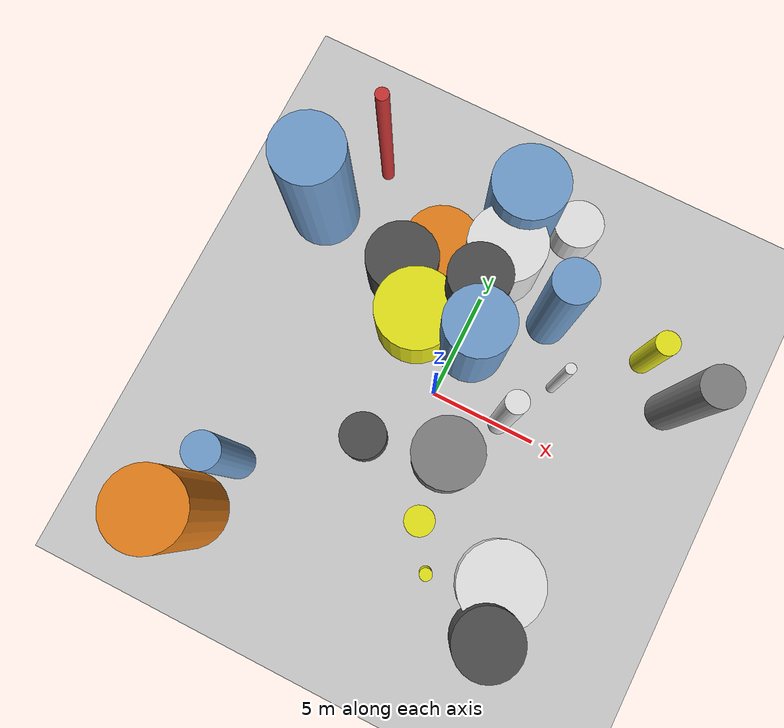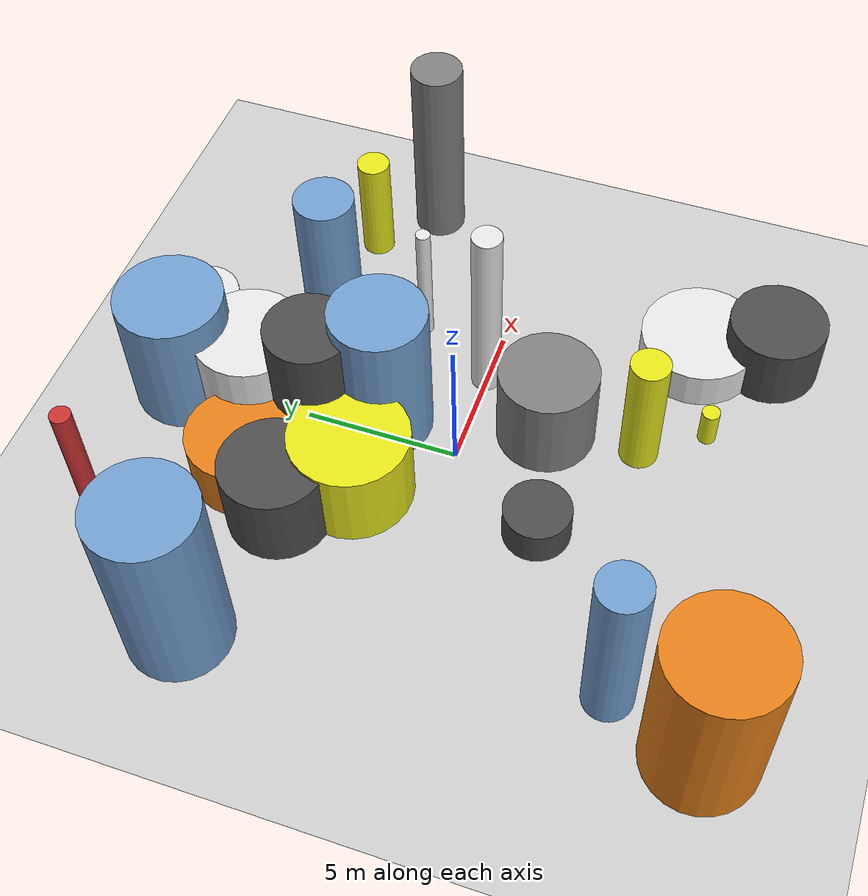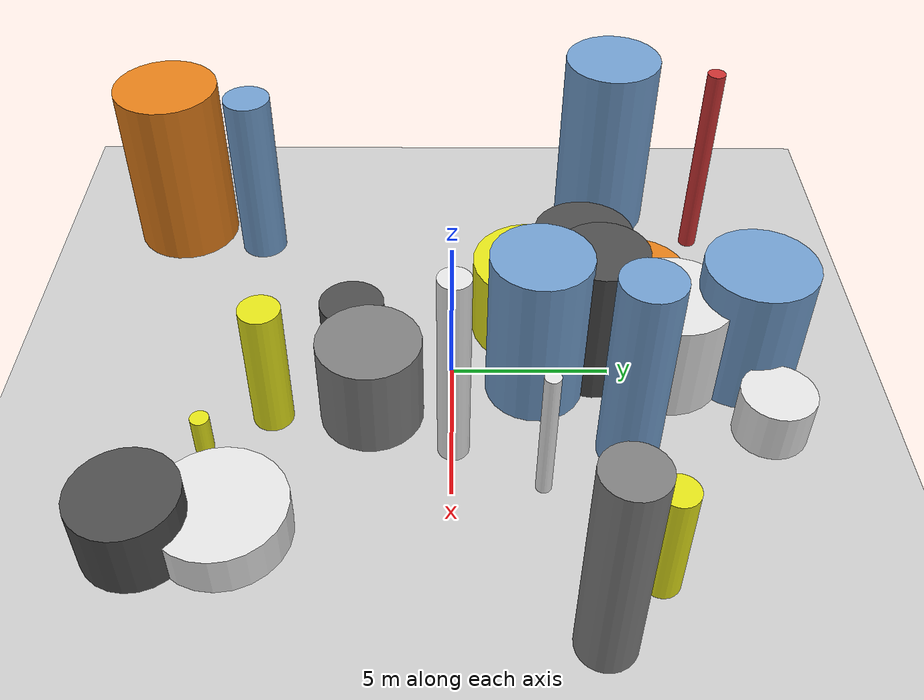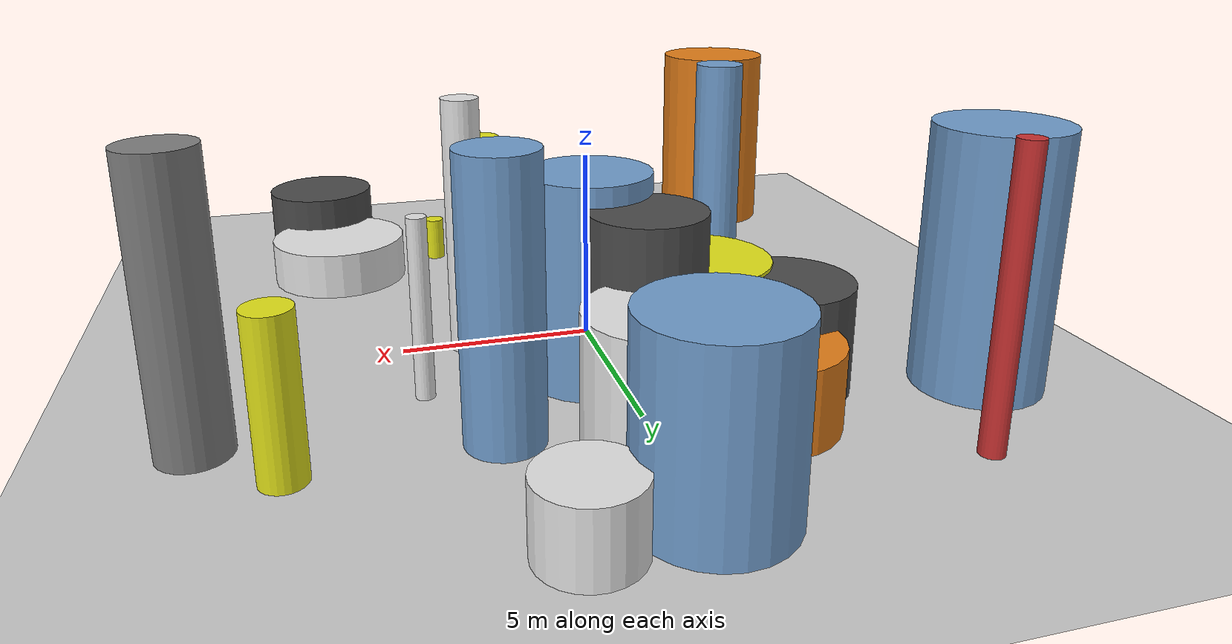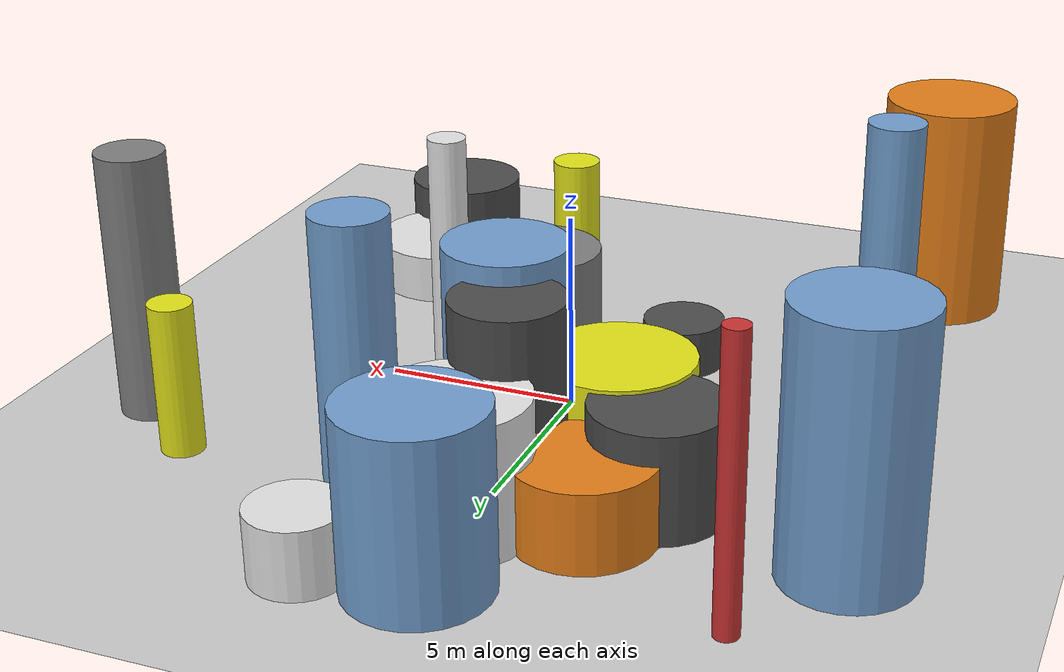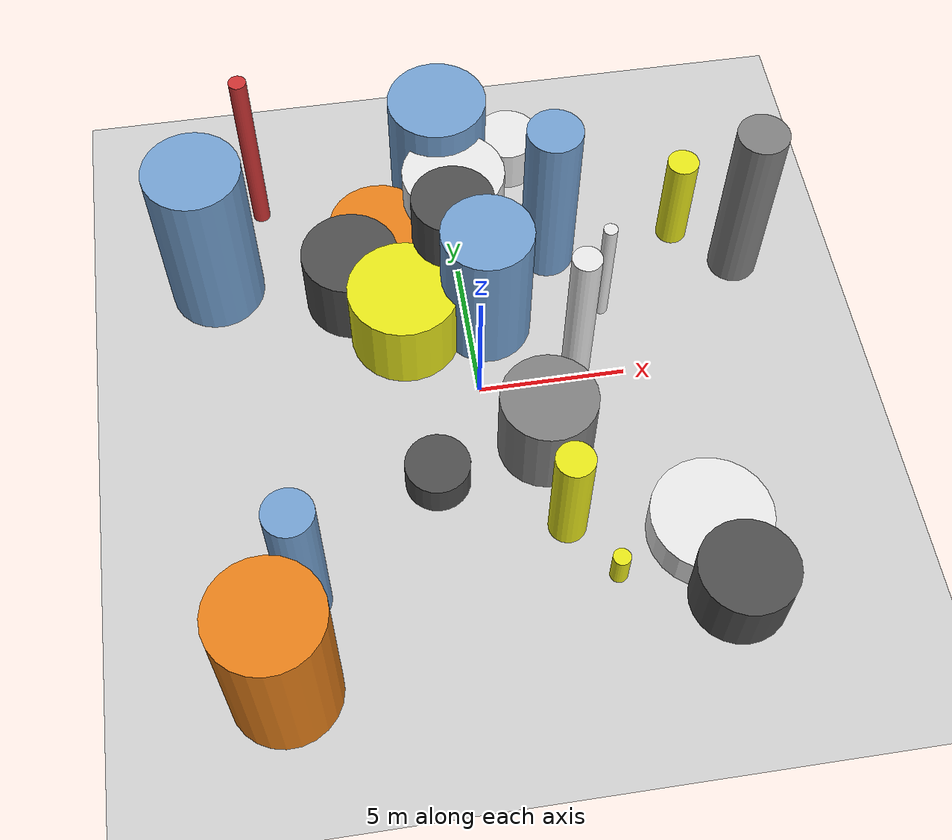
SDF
<?xml version='1.0'?>
<sdf version='1.6'>
  <world name='default'>
    <!-- Sun light -->
    <light name='sun' type='directional'>
      <cast_shadows>1</cast_shadows>
      <pose>0 0 10 0 0 0</pose>
      <diffuse>0.8 0.8 0.8 1</diffuse>
      <specular>0.2 0.2 0.2 1</specular>
      <attenuation>
        <range>1000</range>
        <constant>0.9</constant>
        <linear>0.01</linear>
        <quadratic>0.001</quadratic>
      </attenuation>
      <direction>-0.5 0.1 -0.9</direction>
    </light>

    <!-- Ground plane -->
    <model name='ground_plane'>
      <static>1</static>
      <link name='link'>
        <collision name='collision'>
          <geometry>
            <plane>
              <normal>0 0 1</normal>
              <size>100 100</size>
            </plane>
          </geometry>
          <surface>
            <contact>
              <collide_bitmask>65535</collide_bitmask>
              <ode/>
            </contact>
            <friction>
              <ode>
                <mu>100</mu>
                <mu2>50</mu2>
              </ode>
              <torsional><ode/></torsional>
            </friction>
            <bounce/>
          </surface>
          <max_contacts>10</max_contacts>
        </collision>
        <visual name='visual'>
          <cast_shadows>0</cast_shadows>
          <geometry>
            <plane>
              <normal>0 0 1</normal>
              <size>100 100</size>
            </plane>
          </geometry>
          <material>
            <script>
              <uri>file://media/materials/scripts/gazebo.material</uri>
              <n>Gazebo/Grey</n>
            </script>
          </material>
        </visual>
      </link>
    </model>

    <!-- Environment -->
    <magnetic_field>6e-06 2.3e-05 -4.2e-05</magnetic_field>
    <atmosphere type='adiabatic'/>
    <physics name='default_physics' default='0' type='ode'>
      <gravity>0 0 -9.8</gravity>
      <max_step_size>0.004</max_step_size>
      <real_time_factor>1</real_time_factor>
      <real_time_update_rate>250</real_time_update_rate>
    </physics>
    <scene>
      <ambient>0.4 0.4 0.4 1</ambient>
      <background>0.7 0.7 0.7 1</background>
      <shadows>1</shadows>
    </scene>
    <wind/>
    <spherical_coordinates>
      <surface_model>EARTH_WGS84</surface_model>
      <latitude_deg>0</latitude_deg>
      <longitude_deg>0</longitude_deg>
      <elevation>0</elevation>
      <heading_deg>0</heading_deg>
    </spherical_coordinates>

    <!-- ============ OBSTACLES (23) ============ -->
    <model name='obs_00'>
      <static>1</static>
      <link name='link'>
        <visual name='visual'>
          <geometry>
            <cylinder>
              <radius>1.0739</radius>
              <length>1.2564</length>
            </cylinder>
          </geometry>
          <material>
            <script>
              <n>Gazebo/DarkGrey</n>
              <uri>file://media/materials/scripts/gazebo.material</uri>
            </script>
            <ambient>0.3 0.3 0.3 1</ambient>
          </material>
        </visual>
        <collision name='collision'>
          <geometry>
            <cylinder>
              <radius>1.0739</radius>
              <length>1.2564</length>
            </cylinder>
          </geometry>
          <max_contacts>10</max_contacts>
          <surface>
            <contact><ode/></contact>
            <bounce/>
            <friction>
              <ode><mu>1</mu><mu2>1</mu2></ode>
              <torsional><ode/></torsional>
            </friction>
          </surface>
        </collision>
      </link>
      <pose>-1.8968 -3.2966 0.6282 0 0 0.9697</pose>
    </model>

    <model name='obs_01'>
      <static>1</static>
      <link name='link'>
        <visual name='visual'>
          <geometry>
            <cylinder>
              <radius>0.2406</radius>
              <length>4.5430</length>
            </cylinder>
          </geometry>
          <material>
            <script>
              <n>Gazebo/White</n>
              <uri>file://media/materials/scripts/gazebo.material</uri>
            </script>
            <ambient>0.9 0.9 0.9 1</ambient>
          </material>
        </visual>
        <collision name='collision'>
          <geometry>
            <cylinder>
              <radius>0.2406</radius>
              <length>4.5430</length>
            </cylinder>
          </geometry>
          <max_contacts>10</max_contacts>
          <surface>
            <contact><ode/></contact>
            <bounce/>
            <friction>
              <ode><mu>1</mu><mu2>1</mu2></ode>
              <torsional><ode/></torsional>
            </friction>
          </surface>
        </collision>
      </link>
      <pose>4.7210 2.6796 2.2715 0 0 1.1066</pose>
    </model>

    <model name='obs_02'>
      <static>1</static>
      <link name='link'>
        <visual name='visual'>
          <geometry>
            <cylinder>
              <radius>1.5966</radius>
              <length>3.0596</length>
            </cylinder>
          </geometry>
          <material>
            <script>
              <n>Gazebo/Grey</n>
              <uri>file://media/materials/scripts/gazebo.material</uri>
            </script>
            <ambient>0.5 0.5 0.5 1</ambient>
          </material>
        </visual>
        <collision name='collision'>
          <geometry>
            <cylinder>
              <radius>1.5966</radius>
              <length>3.0596</length>
            </cylinder>
          </geometry>
          <max_contacts>10</max_contacts>
          <surface>
            <contact><ode/></contact>
            <bounce/>
            <friction>
              <ode><mu>1</mu><mu2>1</mu2></ode>
              <torsional><ode/></torsional>
            </friction>
          </surface>
        </collision>
      </link>
      <pose>1.8231 -2.4511 1.5298 0 0 0.6477</pose>
    </model>

    <model name='obs_03'>
      <static>1</static>
      <link name='link'>
        <visual name='visual'>
          <geometry>
            <cylinder>
              <radius>1.7545</radius>
              <length>6.0393</length>
            </cylinder>
          </geometry>
          <material>
            <script>
              <n>Gazebo/Orange</n>
              <uri>file://media/materials/scripts/gazebo.material</uri>
            </script>
            <ambient>0.9 0.5 0.1 1</ambient>
          </material>
        </visual>
        <collision name='collision'>
          <geometry>
            <cylinder>
              <radius>1.7545</radius>
              <length>6.0393</length>
            </cylinder>
          </geometry>
          <max_contacts>10</max_contacts>
          <surface>
            <contact><ode/></contact>
            <bounce/>
            <friction>
              <ode><mu>1</mu><mu2>1</mu2></ode>
              <torsional><ode/></torsional>
            </friction>
          </surface>
        </collision>
      </link>
      <pose>-7.4126 -9.7161 3.0196 0 0 1.7452</pose>
    </model>

    <model name='obs_04'>
      <static>1</static>
      <link name='link'>
        <visual name='visual'>
          <geometry>
            <cylinder>
              <radius>1.7300</radius>
              <length>4.4108</length>
            </cylinder>
          </geometry>
          <material>
            <script>
              <n>Gazebo/Blue</n>
              <uri>file://media/materials/scripts/gazebo.material</uri>
            </script>
            <ambient>0.447 0.624 0.812 1</ambient>
          </material>
        </visual>
        <collision name='collision'>
          <geometry>
            <cylinder>
              <radius>1.7300</radius>
              <length>4.4108</length>
            </cylinder>
          </geometry>
          <max_contacts>10</max_contacts>
          <surface>
            <contact><ode/></contact>
            <bounce/>
            <friction>
              <ode><mu>1</mu><mu2>1</mu2></ode>
              <torsional><ode/></torsional>
            </friction>
          </surface>
        </collision>
      </link>
      <pose>-0.1147 9.2458 2.2054 0 0 1.0029</pose>
    </model>

    <model name='obs_05'>
      <static>1</static>
      <link name='link'>
        <visual name='visual'>
          <geometry>
            <cylinder>
              <radius>0.2925</radius>
              <length>1.3029</length>
            </cylinder>
          </geometry>
          <material>
            <script>
              <n>Gazebo/Yellow</n>
              <uri>file://media/materials/scripts/gazebo.material</uri>
            </script>
            <ambient>0.9 0.9 0.1 1</ambient>
          </material>
        </visual>
        <collision name='collision'>
          <geometry>
            <cylinder>
              <radius>0.2925</radius>
              <length>1.3029</length>
            </cylinder>
          </geometry>
          <max_contacts>10</max_contacts>
          <surface>
            <contact><ode/></contact>
            <bounce/>
            <friction>
              <ode><mu>1</mu><mu2>1</mu2></ode>
              <torsional><ode/></torsional>
            </friction>
          </surface>
        </collision>
      </link>
      <pose>3.2784 -7.4115 0.6515 0 0 2.1522</pose>
    </model>

    <model name='obs_06'>
      <static>1</static>
      <link name='link'>
        <visual name='visual'>
          <geometry>
            <cylinder>
              <radius>1.3963</radius>
              <length>4.8159</length>
            </cylinder>
          </geometry>
          <material>
            <script>
              <n>Gazebo/DarkGrey</n>
              <uri>file://media/materials/scripts/gazebo.material</uri>
            </script>
            <ambient>0.3 0.3 0.3 1</ambient>
          </material>
        </visual>
        <collision name='collision'>
          <geometry>
            <cylinder>
              <radius>1.3963</radius>
              <length>4.8159</length>
            </cylinder>
          </geometry>
          <max_contacts>10</max_contacts>
          <surface>
            <contact><ode/></contact>
            <bounce/>
            <friction>
              <ode><mu>1</mu><mu2>1</mu2></ode>
              <torsional><ode/></torsional>
            </friction>
          </surface>
        </collision>
      </link>
      <pose>-0.2384 4.5055 2.4079 0 0 0.7092</pose>
    </model>

    <model name='obs_07'>
      <static>1</static>
      <link name='link'>
        <visual name='visual'>
          <geometry>
            <cylinder>
              <radius>0.9438</radius>
              <length>6.6654</length>
            </cylinder>
          </geometry>
          <material>
            <script>
              <n>Gazebo/Blue</n>
              <uri>file://media/materials/scripts/gazebo.material</uri>
            </script>
            <ambient>0.447 0.624 0.812 1</ambient>
          </material>
        </visual>
        <collision name='collision'>
          <geometry>
            <cylinder>
              <radius>0.9438</radius>
              <length>6.6654</length>
            </cylinder>
          </geometry>
          <max_contacts>10</max_contacts>
          <surface>
            <contact><ode/></contact>
            <bounce/>
            <friction>
              <ode><mu>1</mu><mu2>1</mu2></ode>
              <torsional><ode/></torsional>
            </friction>
          </surface>
        </collision>
      </link>
      <pose>3.2516 5.2778 3.3327 0 0 2.1582</pose>
    </model>

    <model name='obs_08'>
      <static>1</static>
      <link name='link'>
        <visual name='visual'>
          <geometry>
            <cylinder>
              <radius>0.7832</radius>
              <length>6.1397</length>
            </cylinder>
          </geometry>
          <material>
            <script>
              <n>Gazebo/Blue</n>
              <uri>file://media/materials/scripts/gazebo.material</uri>
            </script>
            <ambient>0.447 0.624 0.812 1</ambient>
          </material>
        </visual>
        <collision name='collision'>
          <geometry>
            <cylinder>
              <radius>0.7832</radius>
              <length>6.1397</length>
            </cylinder>
          </geometry>
          <max_contacts>10</max_contacts>
          <surface>
            <contact><ode/></contact>
            <bounce/>
            <friction>
              <ode><mu>1</mu><mu2>1</mu2></ode>
              <torsional><ode/></torsional>
            </friction>
          </surface>
        </collision>
      </link>
      <pose>-6.5222 -6.8363 3.0698 0 0 2.9649</pose>
    </model>

    <model name='obs_09'>
      <static>1</static>
      <link name='link'>
        <visual name='visual'>
          <geometry>
            <cylinder>
              <radius>1.6536</radius>
              <length>2.7412</length>
            </cylinder>
          </geometry>
          <material>
            <script>
              <n>Gazebo/DarkGrey</n>
              <uri>file://media/materials/scripts/gazebo.material</uri>
            </script>
            <ambient>0.3 0.3 0.3 1</ambient>
          </material>
        </visual>
        <collision name='collision'>
          <geometry>
            <cylinder>
              <radius>1.6536</radius>
              <length>2.7412</length>
            </cylinder>
          </geometry>
          <max_contacts>10</max_contacts>
          <surface>
            <contact><ode/></contact>
            <bounce/>
            <friction>
              <ode><mu>1</mu><mu2>1</mu2></ode>
              <torsional><ode/></torsional>
            </friction>
          </surface>
        </collision>
      </link>
      <pose>-3.8134 4.3769 1.3706 0 0 1.3878</pose>
    </model>

    <model name='obs_10'>
      <static>1</static>
      <link name='link'>
        <visual name='visual'>
          <geometry>
            <cylinder>
              <radius>0.3005</radius>
              <length>6.9777</length>
            </cylinder>
          </geometry>
          <material>
            <script>
              <n>Gazebo/Red</n>
              <uri>file://media/materials/scripts/gazebo.material</uri>
            </script>
            <ambient>0.8 0.2 0.2 1</ambient>
          </material>
        </visual>
        <collision name='collision'>
          <geometry>
            <cylinder>
              <radius>0.3005</radius>
              <length>6.9777</length>
            </cylinder>
          </geometry>
          <max_contacts>10</max_contacts>
          <surface>
            <contact><ode/></contact>
            <bounce/>
            <friction>
              <ode><mu>1</mu><mu2>1</mu2></ode>
              <torsional><ode/></torsional>
            </friction>
          </surface>
        </collision>
      </link>
      <pose>-6.7600 8.6255 3.4889 0 0 2.0059</pose>
    </model>

    <model name='obs_11'>
      <static>1</static>
      <link name='link'>
        <visual name='visual'>
          <geometry>
            <cylinder>
              <radius>1.5905</radius>
              <length>2.2634</length>
            </cylinder>
          </geometry>
          <material>
            <script>
              <n>Gazebo/DarkGrey</n>
              <uri>file://media/materials/scripts/gazebo.material</uri>
            </script>
            <ambient>0.3 0.3 0.3 1</ambient>
          </material>
        </visual>
        <collision name='collision'>
          <geometry>
            <cylinder>
              <radius>1.5905</radius>
              <length>2.2634</length>
            </cylinder>
          </geometry>
          <max_contacts>10</max_contacts>
          <surface>
            <contact><ode/></contact>
            <bounce/>
            <friction>
              <ode><mu>1</mu><mu2>1</mu2></ode>
              <torsional><ode/></torsional>
            </friction>
          </surface>
        </collision>
      </link>
      <pose>6.8196 -8.7188 1.1317 0 0 2.5908</pose>
    </model>

    <model name='obs_12'>
      <static>1</static>
      <link name='link'>
        <visual name='visual'>
          <geometry>
            <cylinder>
              <radius>1.7915</radius>
              <length>3.3935</length>
            </cylinder>
          </geometry>
          <material>
            <script>
              <n>Gazebo/White</n>
              <uri>file://media/materials/scripts/gazebo.material</uri>
            </script>
            <ambient>0.9 0.9 0.9 1</ambient>
          </material>
        </visual>
        <collision name='collision'>
          <geometry>
            <cylinder>
              <radius>1.7915</radius>
              <length>3.3935</length>
            </cylinder>
          </geometry>
          <max_contacts>10</max_contacts>
          <surface>
            <contact><ode/></contact>
            <bounce/>
            <friction>
              <ode><mu>1</mu><mu2>1</mu2></ode>
              <torsional><ode/></torsional>
            </friction>
          </surface>
        </collision>
      </link>
      <pose>0.1053 6.7833 1.6968 0 0 1.3952</pose>
    </model>

    <model name='obs_13'>
      <static>1</static>
      <link name='link'>
        <visual name='visual'>
          <geometry>
            <cylinder>
              <radius>1.9844</radius>
              <length>1.3216</length>
            </cylinder>
          </geometry>
          <material>
            <script>
              <n>Gazebo/White</n>
              <uri>file://media/materials/scripts/gazebo.material</uri>
            </script>
            <ambient>0.9 0.9 0.9 1</ambient>
          </material>
        </visual>
        <collision name='collision'>
          <geometry>
            <cylinder>
              <radius>1.9844</radius>
              <length>1.3216</length>
            </cylinder>
          </geometry>
          <max_contacts>10</max_contacts>
          <surface>
            <contact><ode/></contact>
            <bounce/>
            <friction>
              <ode><mu>1</mu><mu2>1</mu2></ode>
              <torsional><ode/></torsional>
            </friction>
          </surface>
        </collision>
      </link>
      <pose>6.3835 -6.3718 0.6608 0 0 1.5844</pose>
    </model>

    <model name='obs_14'>
      <static>1</static>
      <link name='link'>
        <visual name='visual'>
          <geometry>
            <cylinder>
              <radius>1.5448</radius>
              <length>5.3019</length>
            </cylinder>
          </geometry>
          <material>
            <script>
              <n>Gazebo/Blue</n>
              <uri>file://media/materials/scripts/gazebo.material</uri>
            </script>
            <ambient>0.447 0.624 0.812 1</ambient>
          </material>
        </visual>
        <collision name='collision'>
          <geometry>
            <cylinder>
              <radius>1.5448</radius>
              <length>5.3019</length>
            </cylinder>
          </geometry>
          <max_contacts>10</max_contacts>
          <surface>
            <contact><ode/></contact>
            <bounce/>
            <friction>
              <ode><mu>1</mu><mu2>1</mu2></ode>
              <torsional><ode/></torsional>
            </friction>
          </surface>
        </collision>
      </link>
      <pose>0.6191 2.6030 2.6510 0 0 2.7171</pose>
    </model>

    <model name='obs_15'>
      <static>1</static>
      <link name='link'>
        <visual name='visual'>
          <geometry>
            <cylinder>
              <radius>1.6188</radius>
              <length>6.5189</length>
            </cylinder>
          </geometry>
          <material>
            <script>
              <n>Gazebo/Blue</n>
              <uri>file://media/materials/scripts/gazebo.material</uri>
            </script>
            <ambient>0.447 0.624 0.812 1</ambient>
          </material>
        </visual>
        <collision name='collision'>
          <geometry>
            <cylinder>
              <radius>1.6188</radius>
              <length>6.5189</length>
            </cylinder>
          </geometry>
          <max_contacts>10</max_contacts>
          <surface>
            <contact><ode/></contact>
            <bounce/>
            <friction>
              <ode><mu>1</mu><mu2>1</mu2></ode>
              <torsional><ode/></torsional>
            </friction>
          </surface>
        </collision>
      </link>
      <pose>-8.5201 5.4985 3.2594 0 0 1.6867</pose>
    </model>

    <model name='obs_16'>
      <static>1</static>
      <link name='link'>
        <visual name='visual'>
          <geometry>
            <cylinder>
              <radius>0.6284</radius>
              <length>4.4432</length>
            </cylinder>
          </geometry>
          <material>
            <script>
              <n>Gazebo/Yellow</n>
              <uri>file://media/materials/scripts/gazebo.material</uri>
            </script>
            <ambient>0.9 0.9 0.1 1</ambient>
          </material>
        </visual>
        <collision name='collision'>
          <geometry>
            <cylinder>
              <radius>0.6284</radius>
              <length>4.4432</length>
            </cylinder>
          </geometry>
          <max_contacts>10</max_contacts>
          <surface>
            <contact><ode/></contact>
            <bounce/>
            <friction>
              <ode><mu>1</mu><mu2>1</mu2></ode>
              <torsional><ode/></torsional>
            </friction>
          </surface>
        </collision>
      </link>
      <pose>1.9889 -5.4878 2.2216 0 0 2.1147</pose>
    </model>

    <model name='obs_17'>
      <static>1</static>
      <link name='link'>
        <visual name='visual'>
          <geometry>
            <cylinder>
              <radius>0.8591</radius>
              <length>6.8496</length>
            </cylinder>
          </geometry>
          <material>
            <script>
              <n>Gazebo/Grey</n>
              <uri>file://media/materials/scripts/gazebo.material</uri>
            </script>
            <ambient>0.5 0.5 0.5 1</ambient>
          </material>
        </visual>
        <collision name='collision'>
          <geometry>
            <cylinder>
              <radius>0.8591</radius>
              <length>6.8496</length>
            </cylinder>
          </geometry>
          <max_contacts>10</max_contacts>
          <surface>
            <contact><ode/></contact>
            <bounce/>
            <friction>
              <ode><mu>1</mu><mu2>1</mu2></ode>
              <torsional><ode/></torsional>
            </friction>
          </surface>
        </collision>
      </link>
      <pose>9.8026 3.9799 3.4248 0 0 1.4092</pose>
    </model>

    <model name='obs_18'>
      <static>1</static>
      <link name='link'>
        <visual name='visual'>
          <geometry>
            <cylinder>
              <radius>1.7409</radius>
              <length>2.0102</length>
            </cylinder>
          </geometry>
          <material>
            <script>
              <n>Gazebo/Orange</n>
              <uri>file://media/materials/scripts/gazebo.material</uri>
            </script>
            <ambient>0.9 0.5 0.1 1</ambient>
          </material>
        </visual>
        <collision name='collision'>
          <geometry>
            <cylinder>
              <radius>1.7409</radius>
              <length>2.0102</length>
            </cylinder>
          </geometry>
          <max_contacts>10</max_contacts>
          <surface>
            <contact><ode/></contact>
            <bounce/>
            <friction>
              <ode><mu>1</mu><mu2>1</mu2></ode>
              <torsional><ode/></torsional>
            </friction>
          </surface>
        </collision>
      </link>
      <pose>-2.6439 6.0097 1.0051 0 0 0.0045</pose>
    </model>

    <model name='obs_19'>
      <static>1</static>
      <link name='link'>
        <visual name='visual'>
          <geometry>
            <cylinder>
              <radius>1.8976</radius>
              <length>2.8351</length>
            </cylinder>
          </geometry>
          <material>
            <script>
              <n>Gazebo/Yellow</n>
              <uri>file://media/materials/scripts/gazebo.material</uri>
            </script>
            <ambient>0.9 0.9 0.1 1</ambient>
          </material>
        </visual>
        <collision name='collision'>
          <geometry>
            <cylinder>
              <radius>1.8976</radius>
              <length>2.8351</length>
            </cylinder>
          </geometry>
          <max_contacts>10</max_contacts>
          <surface>
            <contact><ode/></contact>
            <bounce/>
            <friction>
              <ode><mu>1</mu><mu2>1</mu2></ode>
              <torsional><ode/></torsional>
            </friction>
          </surface>
        </collision>
      </link>
      <pose>-2.1908 2.5705 1.4175 0 0 0.8688</pose>
    </model>

    <model name='obs_20'>
      <static>1</static>
      <link name='link'>
        <visual name='visual'>
          <geometry>
            <cylinder>
              <radius>0.5433</radius>
              <length>3.8609</length>
            </cylinder>
          </geometry>
          <material>
            <script>
              <n>Gazebo/Yellow</n>
              <uri>file://media/materials/scripts/gazebo.material</uri>
            </script>
            <ambient>0.9 0.9 0.1 1</ambient>
          </material>
        </visual>
        <collision name='collision'>
          <geometry>
            <cylinder>
              <radius>0.5433</radius>
              <length>3.8609</length>
            </cylinder>
          </geometry>
          <max_contacts>10</max_contacts>
          <surface>
            <contact><ode/></contact>
            <bounce/>
            <friction>
              <ode><mu>1</mu><mu2>1</mu2></ode>
              <torsional><ode/></torsional>
            </friction>
          </surface>
        </collision>
      </link>
      <pose>7.9376 5.6529 1.9305 0 0 1.8841</pose>
    </model>

    <model name='obs_21'>
      <static>1</static>
      <link name='link'>
        <visual name='visual'>
          <geometry>
            <cylinder>
              <radius>0.4821</radius>
              <length>6.7253</length>
            </cylinder>
          </geometry>
          <material>
            <script>
              <n>Gazebo/White</n>
              <uri>file://media/materials/scripts/gazebo.material</uri>
            </script>
            <ambient>0.9 0.9 0.9 1</ambient>
          </material>
        </visual>
        <collision name='collision'>
          <geometry>
            <cylinder>
              <radius>0.4821</radius>
              <length>6.7253</length>
            </cylinder>
          </geometry>
          <max_contacts>10</max_contacts>
          <surface>
            <contact><ode/></contact>
            <bounce/>
            <friction>
              <ode><mu>1</mu><mu2>1</mu2></ode>
              <torsional><ode/></torsional>
            </friction>
          </surface>
        </collision>
      </link>
      <pose>3.2700 0.0569 3.3627 0 0 2.9236</pose>
    </model>

    <model name='obs_22'>
      <static>1</static>
      <link name='link'>
        <visual name='visual'>
          <geometry>
            <cylinder>
              <radius>1.1419</radius>
              <length>1.7008</length>
            </cylinder>
          </geometry>
          <material>
            <script>
              <n>Gazebo/White</n>
              <uri>file://media/materials/scripts/gazebo.material</uri>
            </script>
            <ambient>0.9 0.9 0.9 1</ambient>
          </material>
        </visual>
        <collision name='collision'>
          <geometry>
            <cylinder>
              <radius>1.1419</radius>
              <length>1.7008</length>
            </cylinder>
          </geometry>
          <max_contacts>10</max_contacts>
          <surface>
            <contact><ode/></contact>
            <bounce/>
            <friction>
              <ode><mu>1</mu><mu2>1</mu2></ode>
              <torsional><ode/></torsional>
            </friction>
          </surface>
        </collision>
      </link>
      <pose>2.5177 9.6956 0.8504 0 0 1.6187</pose>
    </model>

    <!-- GUI camera -->
    <gui fullscreen='0'>
      <camera name='user_camera'>
        <pose>-15 0 18 0 0.85 0.15</pose>
        <view_controller>orbit</view_controller>
        <projection_type>perspective</projection_type>
      </camera>
    </gui>
  </world>
</sdf>
